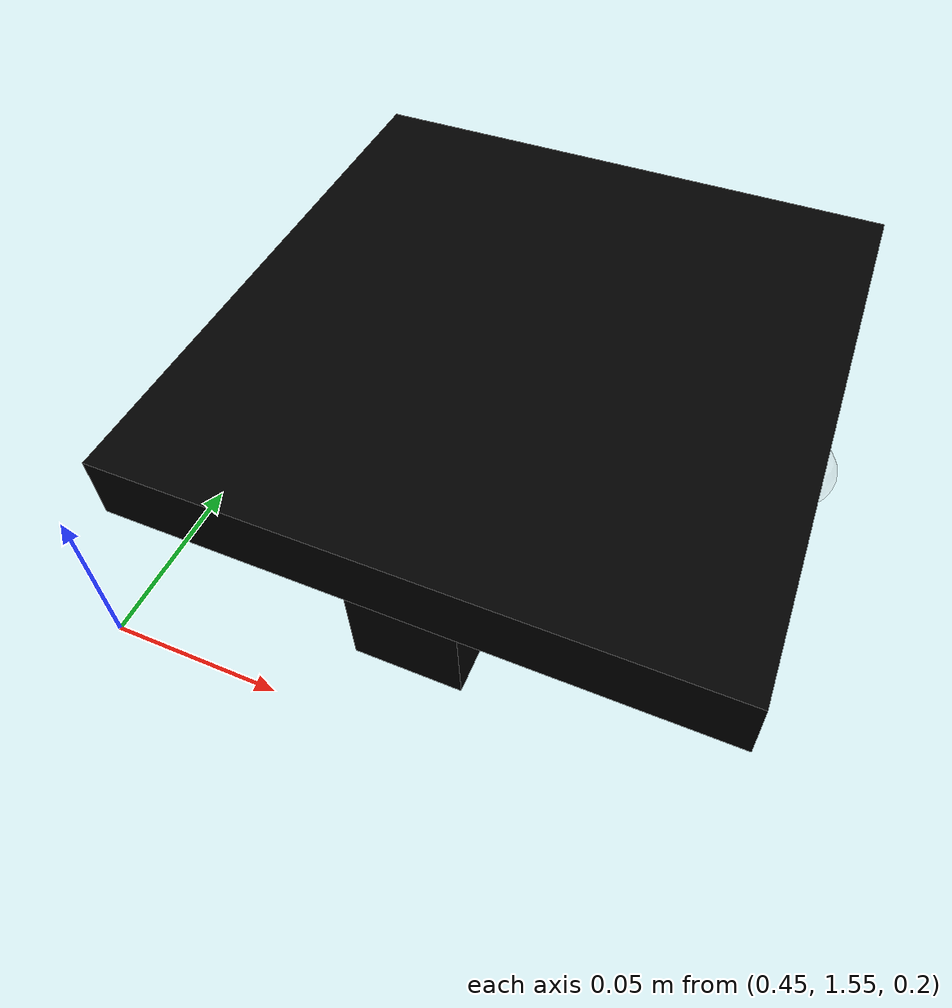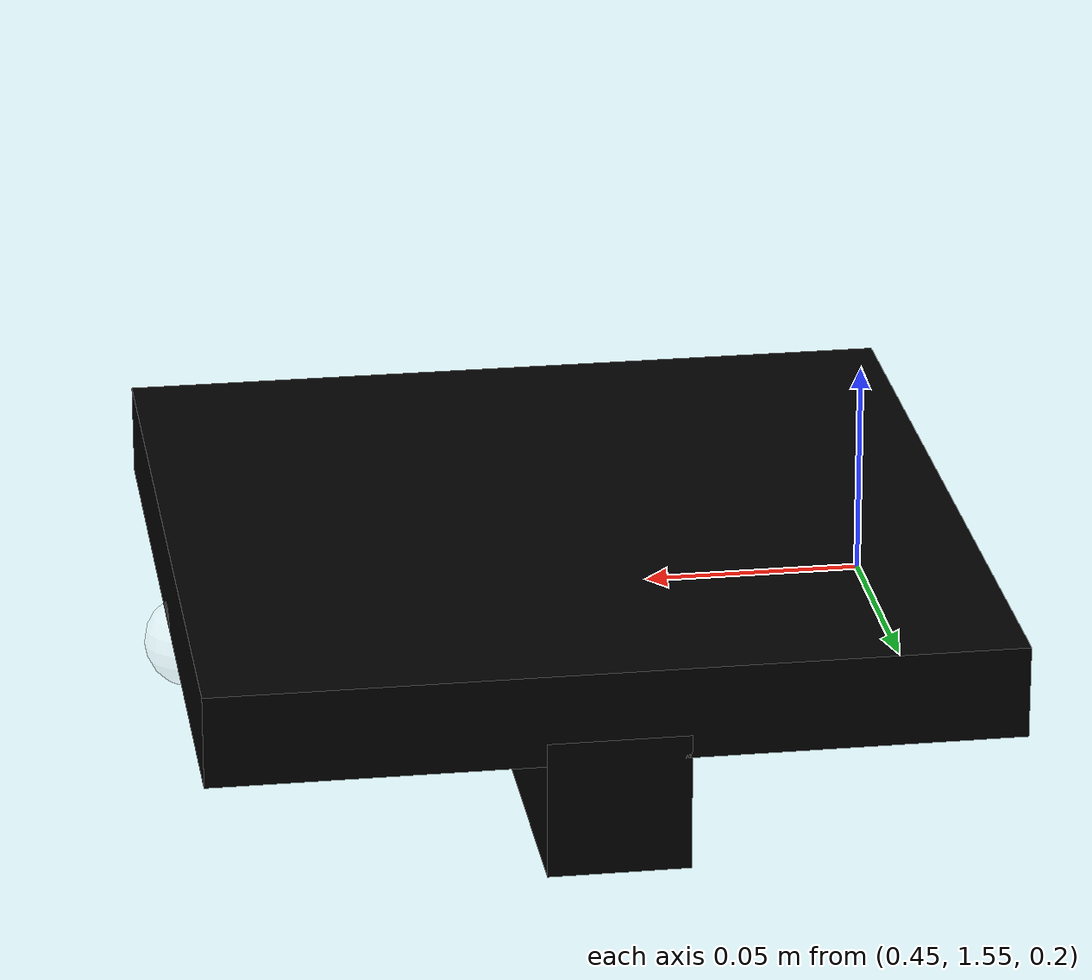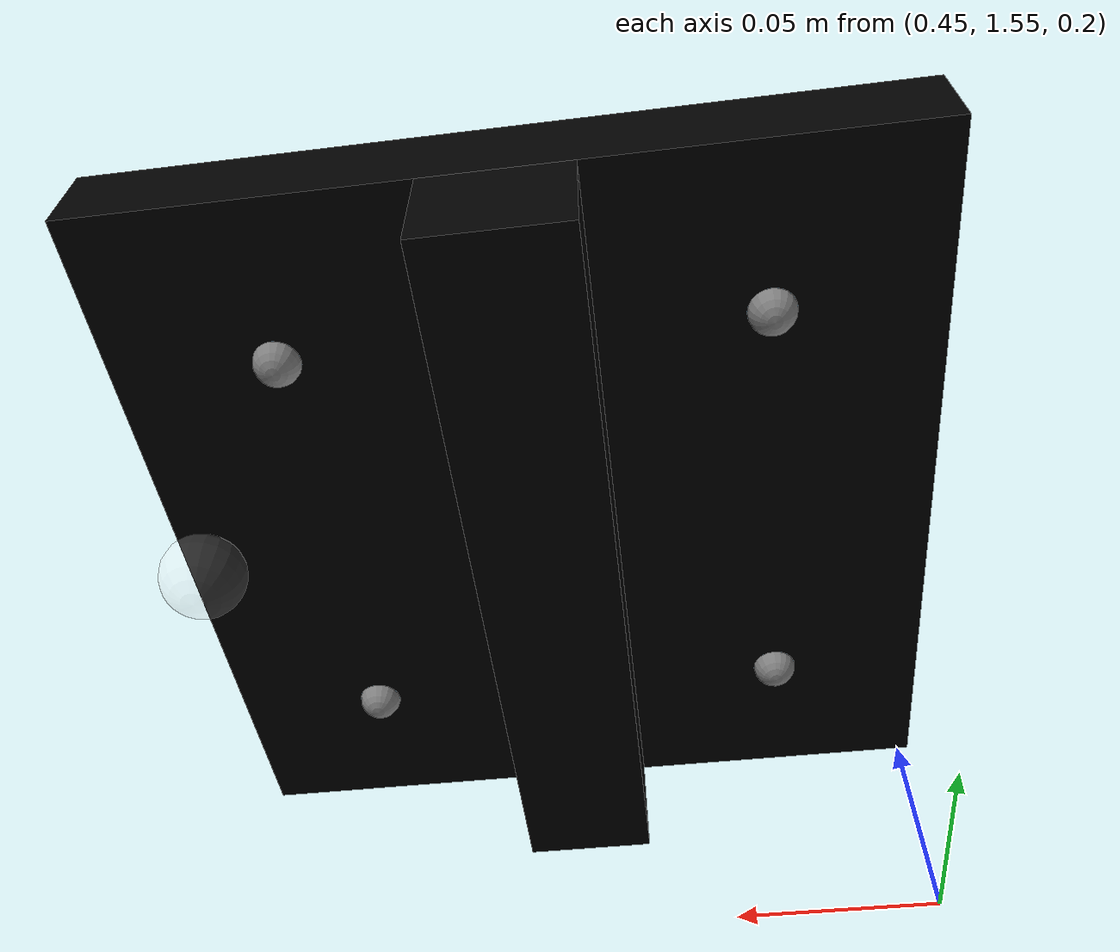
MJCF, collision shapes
<mujoco model="mini-drone-a-1">
  <!-- Compiler settings to automatically compute inertia from geometry and set mujoco_models directory -->
  <compiler inertiafromgeom="true" assetdir="../assets"/>

  <!-- Simulation options including timestep, gravity, solver iterations, integration method, air density, and air viscosity -->
  <option gravity="0 0 -9.81" iterations="50" integrator="Euler" density="1.225" viscosity="1.8e-5"/>

  <!-- Asset definitions for drone components -->
  <asset>
    <!-- Mesh for the drone body -->
    <mesh name="frame_1" file="frame.stl"/>
    <!-- Mesh for clockwise rotating propellers -->
    <mesh name="cwprop_1" file="cwprop.stl"/>
    <!-- Mesh for counter-clockwise rotating propellers -->
    <mesh name="ccwprop_1" file="ccwprop.stl"/>
  </asset>

  <!-- Default properties for joints, geometries, and motors -->
  <default>
    <!-- Joint properties: low damping to allow free rotation -->
    <joint damping="0.01"/>
    <!-- Geometric properties: friction, density, and collision margin -->
    <geom friction="1 0.5 0.5" density="1000" margin="0.01"/>
    <!-- Motor properties: control range -->
    <motor ctrlrange="0.0 1.0"/>
  </default>

  <worldbody>
    <body name="drone_1" pos="0.535233134659635 1.647278207092664 .25">
      <!-- Free joint for models body to allow free movement in the environment -->
      <freejoint name="drone_1_free_joint"/>
      <inertial pos="0 0 0" mass="0.1"/>
      <site name="drone_1_sensor_site" pos="0 0 0"/>
      <geom name="drone_1_mesh" type="mesh" rgba="0.615686 0.811765 0.929412 1" mesh="frame_1" contype="0" conaffinity="0"/>

      <!-- Main collision box for the drone -->
      <geom name="drone_1_collision_1" type="box" size="0.085 0.085 0.01" rgba="0 0 0 0.2" contype="1" conaffinity="1"/>
      <!-- Additional collision box for the drone -->
      <geom name="drone_1_collision_2" type="box" pos="0 0 -0.02" size="0.015 0.085 0.015" rgba="0 0 0 0.2" contype="1" conaffinity="1"/>

      <!-- Propeller bodies and their visuals -->
      <!-- Clockwise rotating propellers -->
      <body name="front_right_prop_1" pos="0.05 -0.05 0">
        <inertial pos="0 0 -0.00580526" quat="0.5 0.5 -0.5 0.5" mass="0.01"/>
        <site name="front_right_prop_1" pos="0 0 -0.01"/>
        <joint name="front_right_prop_1" pos="0 0 0" axis="0 0 1" limited="false"/>
        <geom name="front_right_prop_1" pos="0 0 -0.005" type="mesh" rgba="0.615686 0.811765 0.929412 1" mesh="cwprop_1"/>
      </body>
      <body name="back_left_prop_1" pos="-0.05 0.05 0">
        <inertial pos="0 0 -0.00580526" quat="0.5 0.5 -0.5 0.5" mass="0.01"/>
        <site name="back_left_prop_1" pos="0 0 -0.01"/>
        <joint name="back_left_prop_1" pos="0 0 0" axis="0 0 1" limited="false"/>
        <geom name="back_left_front_1" pos="0 0 -0.005" type="mesh" rgba="0.615686 0.811765 0.929412 1" mesh="cwprop_1"/>
      </body>
      <!-- Counter-clockwise rotating propellers -->
      <body name="front_left_prop_1" pos="0.05 0.05 0">
        <inertial pos="0 0 -0.00580545" quat="0.5 0.5 -0.5 0.5" mass="0.01"/>
        <site name="front_left_prop_1" pos="0 0 -0.01"/>
        <joint name="front_left_prop_1" pos="0 0 0" axis="0 0 1" limited="false"/>
        <geom name="front_left_prop_1" pos="0 0 -0.005" type="mesh" rgba="0.615686 0.811765 0.929412 1" mesh="ccwprop_1"/>
      </body>
      <body name="back_right_prop_1" pos="-0.05 -0.05 0">
        <inertial pos="0 0 -0.00580545" quat="0.5 0.5 -0.5 0.5" mass="0.01"/>
        <site name="back_right_prop_1" pos="0 0 -0.01"/>
        <joint name="back_right_prop_1" pos="0 0 0" axis="0 0 1" limited="false"/>
        <geom name="back_right_prop_1" pos="0 0 -0.005" type="mesh" rgba="0.615686 0.811765 0.929412 1" mesh="ccwprop_1"/>
      </body>

      <site name="bullet_spawn_position_1" pos="0.08 0 -0.015" size="0.01" rgba="1 1 1 .2"/>

      <!-- Cameras (2 stereo, 1 normal) -->
      <camera name="camera1" pos="0.1 0 0" xyaxes="0 -1 0 0 0 1" fovy="60" mode="fixed"/>
      <camera name="camera1_left" pos="0.1 0.025 0" xyaxes="0 -1 0 0 0 1" fovy="60" mode="fixed"/>
      <camera name="camera1_right" pos="0.1 -0.025 0" xyaxes="0 -1 0 0 0 1" fovy="60" mode="fixed"/>
    </body>
    <body name="bullet_1" pos="0 0 0">
      <freejoint name="bullet_1"/>
      <geom name="bullet_1" type="sphere" size="0.01" rgba="0 0 0 0" contype="0" conaffinity="0"/>
    </body>
  </worldbody>

  <!-- Actuator definitions for controlling drone propellers -->
  <actuator>
    <motor name="front_left_1" site="front_left_prop_1" ctrllimited="true" ctrlrange="0.0 1.0" gear="0 0 10 0 0 1"/>
    <motor name="back_right_1" site="back_right_prop_1" ctrllimited="true" ctrlrange="0.0 1.0" gear="0 0 10 0 0 1"/>
    <motor name="front_right_1" site="front_right_prop_1" ctrllimited="true" ctrlrange="0.0 1.0" gear="0 0 10 0 0 -1"/>
    <motor name="back_left_1" site="back_left_prop_1" ctrllimited="true" ctrlrange="0.0 1.0" gear="0 0 10 0 0 -1"/>
  </actuator>

  <!-- Sensor definitions for the drone-->
  <sensor>
    <accelerometer name="accelerometer1" site="drone_1_sensor_site" noise="0.1" cutoff="10"/>
    <gyro name="gyro1" site="drone_1_sensor_site" noise="0.1" cutoff="10"/>
  </sensor>
</mujoco>
